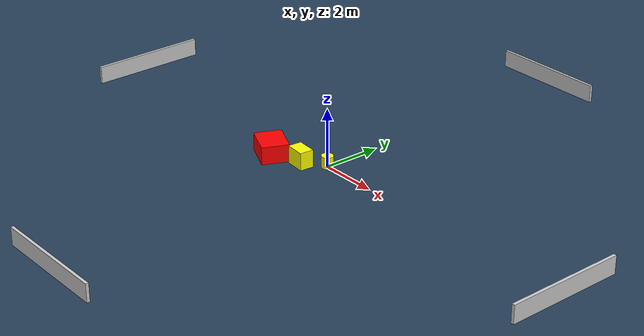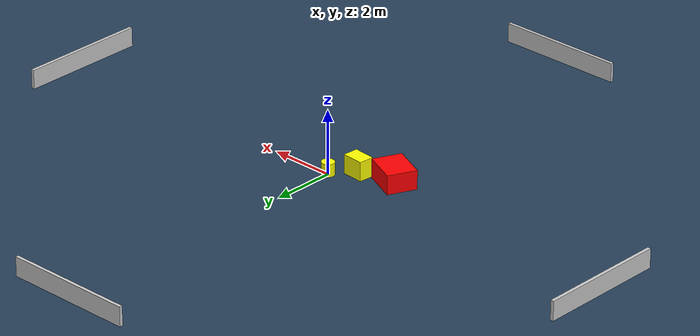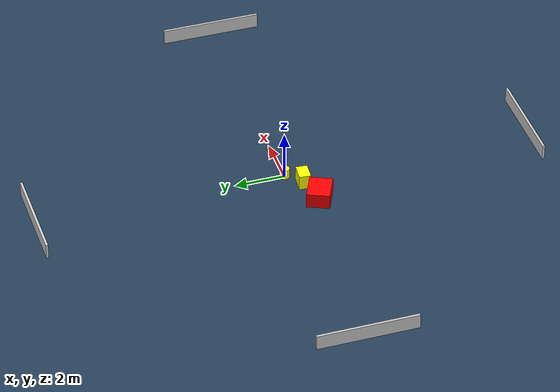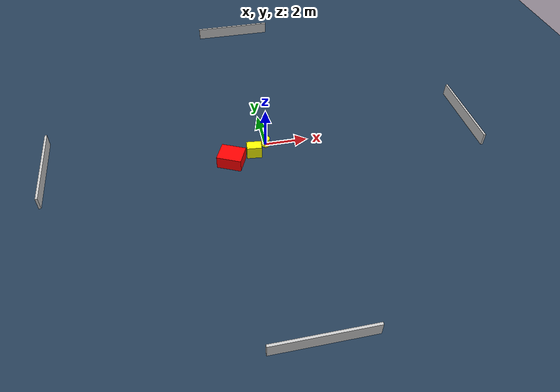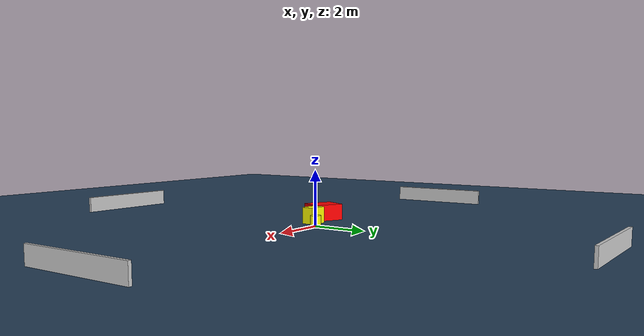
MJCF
<?xml version="1.0" ?>
<mujoco model="generated_environment">
  <option timestep="0.01" integrator="RK4" cone="elliptic"/>
  <default>
    <geom density="1"/>
  </default>
  <asset>
    <texture builtin="gradient" height="3072" name="skybox" rgb1="0.3 0.5 0.7" rgb2="0 0 0" type="skybox" width="512"/>
    <texture builtin="checker" height="300" name="groundplane" rgb1="0.2 0.3 0.4" rgb2="0.1 0.2 0.3" type="2d" width="300"/>
    <material name="groundplane" reflectance="0.2" texrepeat="5 5" texture="groundplane"/>
  </asset>
  <worldbody>
    <light dir="0 0 -1" directional="true" pos="0 0 1.5"/>
    <geom condim="3" friction="0.5 0.005 0.001" material="groundplane" name="floor" pos="0 0 0" size="0 0 0.05" type="plane"/>
    <body name="walls">
      <geom name="wall_1" condim="4" pos="-10.0 0.0 0.3" rgba="0.800000011920929 0.800000011920929 0.800000011920929 1.0" size="0.05 2.0 0.3" type="box"/>
      <geom name="wall_2" condim="4" pos="10.0 0.0 0.3" rgba="0.800000011920929 0.800000011920929 0.800000011920929 1.0" size="0.05 2.0 0.3" type="box"/>
      <geom name="wall_3" condim="4" pos="0.0 -10.0 0.3" rgba="0.800000011920929 0.800000011920929 0.800000011920929 1.0" size="2.0 0.05 0.3" type="box"/>
      <geom name="wall_4" condim="4" pos="0.0 10.0 0.3" rgba="0.800000011920929 0.800000011920929 0.800000011920929 1.0" size="2.0 0.05 0.3" type="box"/>
    </body>
    <body name="robot">
      <joint name="joint_x" type="slide" pos="0 0 0" axis="1 0 0"/>
      <joint name="joint_y" type="slide" pos="0 0 0" axis="0 1 0"/>
      <geom name="robot" type="cylinder" pos="0.0 0.0 0.2" size="0.2 0.2 0.0" mass="5.0" friction="1.0 0.005 0.0001" condim="4" rgba="1.0 1.0 0.0 1.0"/>
    </body>
    <body name="obstacle_1_movable">
      <geom name="obstacle_1_movable" condim="4" pos="-0.6463165259661073 -0.555884247119349 0.3" euler="0 0 84.9836174050404" friction="0.0 0.005 0.001" rgba="1.0 1.0 0.0 1.0" size="0.23500667396263716 0.3360558188017828 0.3" type="box" mass="0.1"/>
      <joint type="free"/>
    </body>
    <body name="obstacle_2_static">
      <geom name="obstacle_2_static" condim="4" pos="-1.7392670385925968 -0.8636881777903422 0.3" euler="0 0 335.3807433430823" friction="0.0 0.005 0.001" rgba="1.0 0.0 0.0 1.0" size="0.5589129444292127 0.4569624704974651 0.3" type="box"/>
    </body>
  </worldbody>
  <actuator>
    <motor name="actuator_x" joint="joint_x" gear="1" ctrlrange="-1 1"/>
    <motor name="actuator_y" joint="joint_y" gear="1" ctrlrange="-1 1"/>
  </actuator>
</mujoco>
